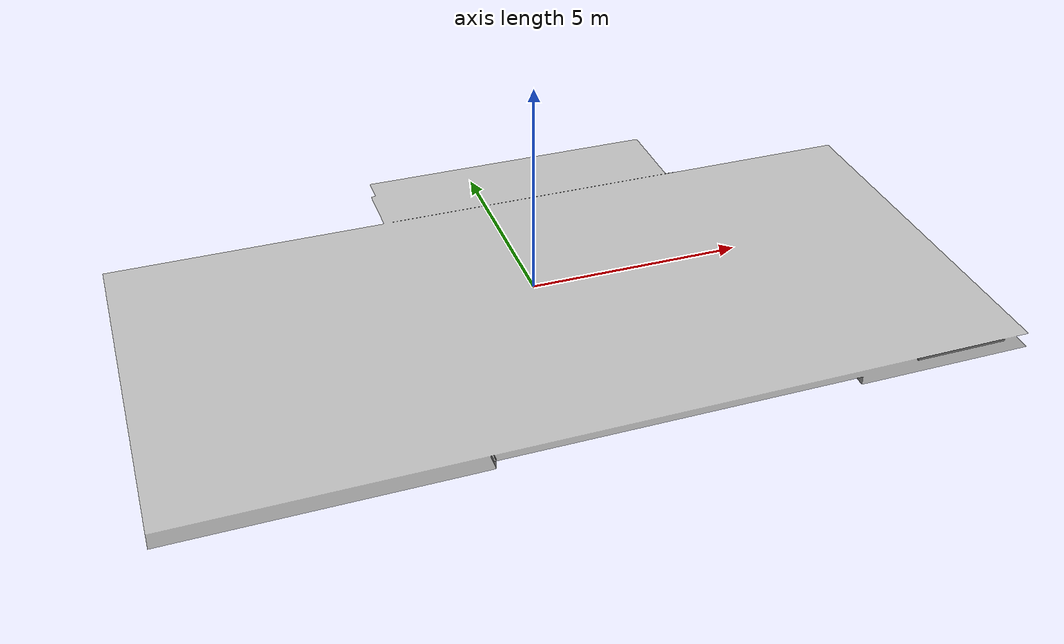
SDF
<?xml version="1.0" ?>
<sdf version="1.6">
  <model name="aws_robomaker_residential_RoomCeiling_01">
    <link name="link">
      <inertial>
        <mass>1</mass>
      </inertial>
      <collision name="collision">
        <geometry>
          <mesh>
            <uri>model://aws_robomaker_residential_RoomCeiling_01/meshes/aws_RoomCeiling_01_collision.DAE</uri>
            <scale>1 1 1</scale>
          </mesh>
        </geometry>
      </collision>
      <visual name="visual">
        <geometry>
          <mesh>
            <uri>model://aws_robomaker_residential_RoomCeiling_01/meshes/aws_RoomCeiling_01_visual.DAE</uri>
          </mesh>
        </geometry>
        <meta>
          <layer> 3 </layer>
        </meta>
      </visual>
    </link>
    <static>1</static>
  </model>
</sdf>
